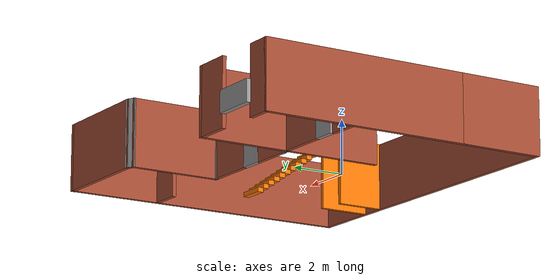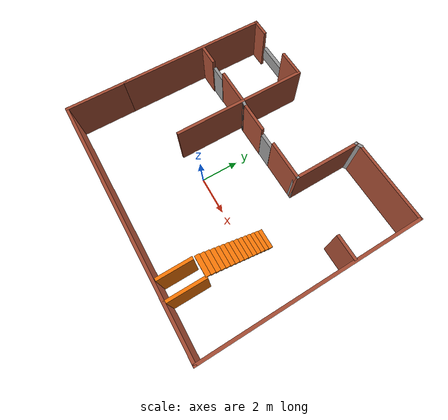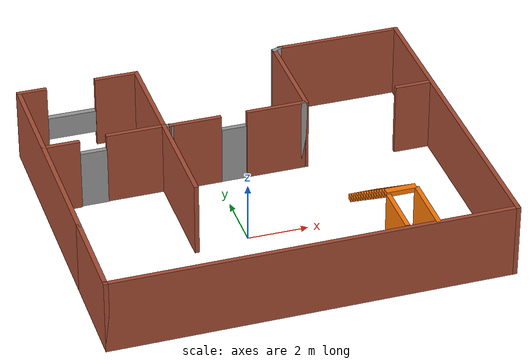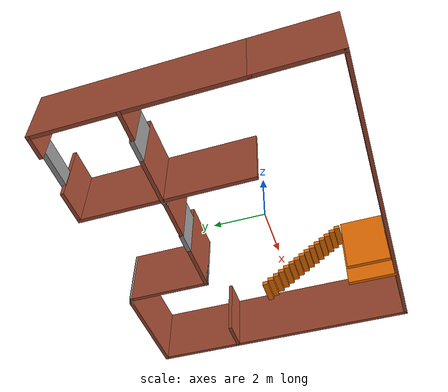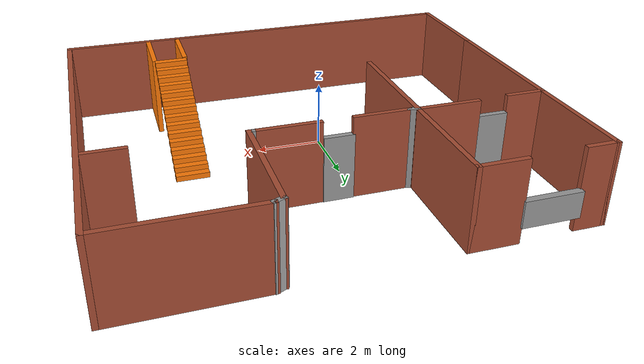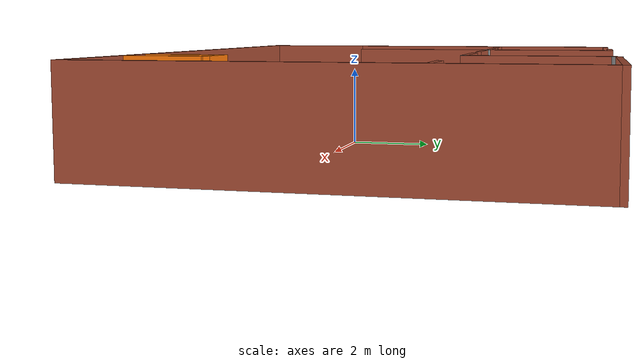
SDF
<?xml version='1.0'?>
<sdf version='1.6'>
  <model name='mybuilding'>
    <pose frame=''>0.81 1.31205 0 0 -0 0</pose>
    <link name='Door_0'>
      <collision name='Door_0_Collision'>
        <geometry>
          <box>
            <size>0.9 0.17 2</size>
          </box>
        </geometry>
        <pose frame=''>0 0 1 0 -0 0</pose>
      </collision>
      <visual name='Door_0_Visual'>
        <pose frame=''>0 0 1 0 -0 0</pose>
        <geometry>
          <box>
            <size>0.9 0.17 2</size>
          </box>
        </geometry>
        <material>
          <script>
            <uri>file://media/materials/scripts/gazebo.material</uri>
            <name>Gazebo/Grey</name>
          </script>
        </material>
      </visual>
      <pose frame=''>-0.266751 2.08903 0 0 -0 0</pose>
    </link>
    <link name='Door_1'>
      <collision name='Door_1_Collision'>
        <geometry>
          <box>
            <size>0.9 0.17 2</size>
          </box>
        </geometry>
        <pose frame=''>0 0 1 0 -0 0</pose>
      </collision>
      <visual name='Door_1_Visual'>
        <pose frame=''>0 0 1 0 -0 0</pose>
        <geometry>
          <box>
            <size>0.9 0.17 2</size>
          </box>
        </geometry>
        <material>
          <script>
            <uri>file://media/materials/scripts/gazebo.material</uri>
            <name>Gazebo/Grey</name>
          </script>
        </material>
      </visual>
      <pose frame=''>-4.93273 2.09956 0 0 -0 0</pose>
    </link>
    <link name='Stairs_0'>
      <visual name='Stairs_0_Visual_0'>
        <pose frame=''>3.4625 -0.251804 0.083333 0 -0 0</pose>
        <geometry>
          <box>
            <size>1 0.233333 0.166667</size>
          </box>
        </geometry>
        <material>
          <script>
            <uri>file://media/materials/scripts/gazebo.material</uri>
            <name>Gazebo/Grey</name>
          </script>
          <ambient>0.996078 0.47451 0.0196078 1</ambient>
        </material>
        <meta>
          <layer>0</layer>
        </meta>
      </visual>
      <collision name='Stairs_0_Collision_0'>
        <geometry>
          <box>
            <size>1 0.233333 0.166667</size>
          </box>
        </geometry>
        <pose frame=''>3.4625 -0.251804 0.083333 0 -0 0</pose>
      </collision>
      <visual name='Stairs_0_Visual_1'>
        <pose frame=''>3.4625 -0.485137 0.25 0 -0 0</pose>
        <geometry>
          <box>
            <size>1 0.233333 0.166667</size>
          </box>
        </geometry>
        <material>
          <script>
            <uri>file://media/materials/scripts/gazebo.material</uri>
            <name>Gazebo/Grey</name>
          </script>
          <ambient>0.996078 0.47451 0.0196078 1</ambient>
        </material>
        <meta>
          <layer>0</layer>
        </meta>
      </visual>
      <collision name='Stairs_0_Collision_1'>
        <geometry>
          <box>
            <size>1 0.233333 0.166667</size>
          </box>
        </geometry>
        <pose frame=''>3.4625 -0.485137 0.25 0 -0 0</pose>
      </collision>
      <visual name='Stairs_0_Visual_2'>
        <pose frame=''>3.4625 -0.71847 0.416667 0 -0 0</pose>
        <geometry>
          <box>
            <size>1 0.233333 0.166667</size>
          </box>
        </geometry>
        <material>
          <script>
            <uri>file://media/materials/scripts/gazebo.material</uri>
            <name>Gazebo/Grey</name>
          </script>
          <ambient>0.996078 0.47451 0.0196078 1</ambient>
        </material>
        <meta>
          <layer>0</layer>
        </meta>
      </visual>
      <collision name='Stairs_0_Collision_2'>
        <geometry>
          <box>
            <size>1 0.233333 0.166667</size>
          </box>
        </geometry>
        <pose frame=''>3.4625 -0.71847 0.416667 0 -0 0</pose>
      </collision>
      <visual name='Stairs_0_Visual_3'>
        <pose frame=''>3.4625 -0.951804 0.583333 0 -0 0</pose>
        <geometry>
          <box>
            <size>1 0.233333 0.166667</size>
          </box>
        </geometry>
        <material>
          <script>
            <uri>file://media/materials/scripts/gazebo.material</uri>
            <name>Gazebo/Grey</name>
          </script>
          <ambient>0.996078 0.47451 0.0196078 1</ambient>
        </material>
        <meta>
          <layer>0</layer>
        </meta>
      </visual>
      <collision name='Stairs_0_Collision_3'>
        <geometry>
          <box>
            <size>1 0.233333 0.166667</size>
          </box>
        </geometry>
        <pose frame=''>3.4625 -0.951804 0.583333 0 -0 0</pose>
      </collision>
      <visual name='Stairs_0_Visual_4'>
        <pose frame=''>3.4625 -1.18514 0.75 0 -0 0</pose>
        <geometry>
          <box>
            <size>1 0.233333 0.166667</size>
          </box>
        </geometry>
        <material>
          <script>
            <uri>file://media/materials/scripts/gazebo.material</uri>
            <name>Gazebo/Grey</name>
          </script>
          <ambient>0.996078 0.47451 0.0196078 1</ambient>
        </material>
        <meta>
          <layer>0</layer>
        </meta>
      </visual>
      <collision name='Stairs_0_Collision_4'>
        <geometry>
          <box>
            <size>1 0.233333 0.166667</size>
          </box>
        </geometry>
        <pose frame=''>3.4625 -1.18514 0.75 0 -0 0</pose>
      </collision>
      <visual name='Stairs_0_Visual_5'>
        <pose frame=''>3.4625 -1.41847 0.916667 0 -0 0</pose>
        <geometry>
          <box>
            <size>1 0.233333 0.166667</size>
          </box>
        </geometry>
        <material>
          <script>
            <uri>file://media/materials/scripts/gazebo.material</uri>
            <name>Gazebo/Grey</name>
          </script>
          <ambient>0.996078 0.47451 0.0196078 1</ambient>
        </material>
        <meta>
          <layer>0</layer>
        </meta>
      </visual>
      <collision name='Stairs_0_Collision_5'>
        <geometry>
          <box>
            <size>1 0.233333 0.166667</size>
          </box>
        </geometry>
        <pose frame=''>3.4625 -1.41847 0.916667 0 -0 0</pose>
      </collision>
      <visual name='Stairs_0_Visual_6'>
        <pose frame=''>3.4625 -1.6518 1.08333 0 -0 0</pose>
        <geometry>
          <box>
            <size>1 0.233333 0.166667</size>
          </box>
        </geometry>
        <material>
          <script>
            <uri>file://media/materials/scripts/gazebo.material</uri>
            <name>Gazebo/Grey</name>
          </script>
          <ambient>0.996078 0.47451 0.0196078 1</ambient>
        </material>
        <meta>
          <layer>0</layer>
        </meta>
      </visual>
      <collision name='Stairs_0_Collision_6'>
        <geometry>
          <box>
            <size>1 0.233333 0.166667</size>
          </box>
        </geometry>
        <pose frame=''>3.4625 -1.6518 1.08333 0 -0 0</pose>
      </collision>
      <visual name='Stairs_0_Visual_7'>
        <pose frame=''>3.4625 -1.88514 1.25 0 -0 0</pose>
        <geometry>
          <box>
            <size>1 0.233333 0.166667</size>
          </box>
        </geometry>
        <material>
          <script>
            <uri>file://media/materials/scripts/gazebo.material</uri>
            <name>Gazebo/Grey</name>
          </script>
          <ambient>0.996078 0.47451 0.0196078 1</ambient>
        </material>
        <meta>
          <layer>0</layer>
        </meta>
      </visual>
      <collision name='Stairs_0_Collision_7'>
        <geometry>
          <box>
            <size>1 0.233333 0.166667</size>
          </box>
        </geometry>
        <pose frame=''>3.4625 -1.88514 1.25 0 -0 0</pose>
      </collision>
      <visual name='Stairs_0_Visual_8'>
        <pose frame=''>3.4625 -2.11847 1.41667 0 -0 0</pose>
        <geometry>
          <box>
            <size>1 0.233333 0.166667</size>
          </box>
        </geometry>
        <material>
          <script>
            <uri>file://media/materials/scripts/gazebo.material</uri>
            <name>Gazebo/Grey</name>
          </script>
          <ambient>0.996078 0.47451 0.0196078 1</ambient>
        </material>
        <meta>
          <layer>0</layer>
        </meta>
      </visual>
      <collision name='Stairs_0_Collision_8'>
        <geometry>
          <box>
            <size>1 0.233333 0.166667</size>
          </box>
        </geometry>
        <pose frame=''>3.4625 -2.11847 1.41667 0 -0 0</pose>
      </collision>
      <visual name='Stairs_0_Visual_9'>
        <pose frame=''>3.4625 -2.3518 1.58333 0 -0 0</pose>
        <geometry>
          <box>
            <size>1 0.233333 0.166667</size>
          </box>
        </geometry>
        <material>
          <script>
            <uri>file://media/materials/scripts/gazebo.material</uri>
            <name>Gazebo/Grey</name>
          </script>
          <ambient>0.996078 0.47451 0.0196078 1</ambient>
        </material>
        <meta>
          <layer>0</layer>
        </meta>
      </visual>
      <collision name='Stairs_0_Collision_9'>
        <geometry>
          <box>
            <size>1 0.233333 0.166667</size>
          </box>
        </geometry>
        <pose frame=''>3.4625 -2.3518 1.58333 0 -0 0</pose>
      </collision>
      <visual name='Stairs_0_Visual_10'>
        <pose frame=''>3.4625 -2.58514 1.75 0 -0 0</pose>
        <geometry>
          <box>
            <size>1 0.233333 0.166667</size>
          </box>
        </geometry>
        <material>
          <script>
            <uri>file://media/materials/scripts/gazebo.material</uri>
            <name>Gazebo/Grey</name>
          </script>
          <ambient>0.996078 0.47451 0.0196078 1</ambient>
        </material>
        <meta>
          <layer>0</layer>
        </meta>
      </visual>
      <collision name='Stairs_0_Collision_10'>
        <geometry>
          <box>
            <size>1 0.233333 0.166667</size>
          </box>
        </geometry>
        <pose frame=''>3.4625 -2.58514 1.75 0 -0 0</pose>
      </collision>
      <visual name='Stairs_0_Visual_11'>
        <pose frame=''>3.4625 -2.81847 1.91667 0 -0 0</pose>
        <geometry>
          <box>
            <size>1 0.233333 0.166667</size>
          </box>
        </geometry>
        <material>
          <script>
            <uri>file://media/materials/scripts/gazebo.material</uri>
            <name>Gazebo/Grey</name>
          </script>
          <ambient>0.996078 0.47451 0.0196078 1</ambient>
        </material>
        <meta>
          <layer>0</layer>
        </meta>
      </visual>
      <collision name='Stairs_0_Collision_11'>
        <geometry>
          <box>
            <size>1 0.233333 0.166667</size>
          </box>
        </geometry>
        <pose frame=''>3.4625 -2.81847 1.91667 0 -0 0</pose>
      </collision>
      <visual name='Stairs_0_Visual_12'>
        <pose frame=''>3.4625 -3.0518 2.08333 0 -0 0</pose>
        <geometry>
          <box>
            <size>1 0.233333 0.166667</size>
          </box>
        </geometry>
        <material>
          <script>
            <uri>file://media/materials/scripts/gazebo.material</uri>
            <name>Gazebo/Grey</name>
          </script>
          <ambient>0.996078 0.47451 0.0196078 1</ambient>
        </material>
        <meta>
          <layer>0</layer>
        </meta>
      </visual>
      <collision name='Stairs_0_Collision_12'>
        <geometry>
          <box>
            <size>1 0.233333 0.166667</size>
          </box>
        </geometry>
        <pose frame=''>3.4625 -3.0518 2.08333 0 -0 0</pose>
      </collision>
      <visual name='Stairs_0_Visual_13'>
        <pose frame=''>3.4625 -3.28514 2.25 0 -0 0</pose>
        <geometry>
          <box>
            <size>1 0.233333 0.166667</size>
          </box>
        </geometry>
        <material>
          <script>
            <uri>file://media/materials/scripts/gazebo.material</uri>
            <name>Gazebo/Grey</name>
          </script>
          <ambient>0.996078 0.47451 0.0196078 1</ambient>
        </material>
        <meta>
          <layer>0</layer>
        </meta>
      </visual>
      <collision name='Stairs_0_Collision_13'>
        <geometry>
          <box>
            <size>1 0.233333 0.166667</size>
          </box>
        </geometry>
        <pose frame=''>3.4625 -3.28514 2.25 0 -0 0</pose>
      </collision>
      <visual name='Stairs_0_Visual_14'>
        <pose frame=''>3.4625 -3.51847 2.41667 0 -0 0</pose>
        <geometry>
          <box>
            <size>1 0.233333 0.166667</size>
          </box>
        </geometry>
        <material>
          <script>
            <uri>file://media/materials/scripts/gazebo.material</uri>
            <name>Gazebo/Grey</name>
          </script>
          <ambient>0.996078 0.47451 0.0196078 1</ambient>
        </material>
        <meta>
          <layer>0</layer>
        </meta>
      </visual>
      <collision name='Stairs_0_Collision_14'>
        <geometry>
          <box>
            <size>1 0.233333 0.166667</size>
          </box>
        </geometry>
        <pose frame=''>3.4625 -3.51847 2.41667 0 -0 0</pose>
      </collision>
    </link>
    <link name='Wall_0'>
      <collision name='Wall_0_Collision'>
        <geometry>
          <box>
            <size>3.25 0.15 2.5</size>
          </box>
        </geometry>
        <pose frame=''>0 0 1.25 0 -0 0</pose>
      </collision>
      <visual name='Wall_0_Visual'>
        <pose frame=''>0 0 1.25 0 -0 0</pose>
        <geometry>
          <box>
            <size>3.25 0.15 2.5</size>
          </box>
        </geometry>
        <material>
          <script>
            <uri>file://media/materials/scripts/gazebo.material</uri>
            <name>Gazebo/Bricks</name>
          </script>
          <ambient>0 0 1 1</ambient>
        </material>
        <meta>
          <layer>0</layer>
        </meta>
      </visual>
      <pose frame=''>-6.55 -4.01205 0 0 0 -1.5708</pose>
    </link>
    <link name='Wall_1'>
      <collision name='Wall_1_Collision'>
        <geometry>
          <box>
            <size>13.25 0.15 2.5</size>
          </box>
        </geometry>
        <pose frame=''>0 0 1.25 0 -0 0</pose>
      </collision>
      <visual name='Wall_1_Visual'>
        <pose frame=''>0 0 1.25 0 -0 0</pose>
        <geometry>
          <box>
            <size>13.25 0.15 2.5</size>
          </box>
        </geometry>
        <material>
          <script>
            <uri>file://media/materials/scripts/gazebo.material</uri>
            <name>Gazebo/Bricks</name>
          </script>
          <ambient>0 0 1 1</ambient>
        </material>
        <meta>
          <layer>0</layer>
        </meta>
      </visual>
      <pose frame=''>0 -5.56205 0 0 -0 0</pose>
    </link>
    <link name='Wall_14'>
      <collision name='Wall_14_Collision'>
        <geometry>
          <box>
            <size>11.25 0.15 2.5</size>
          </box>
        </geometry>
        <pose frame=''>0 0 1.25 0 -0 0</pose>
      </collision>
      <visual name='Wall_14_Visual'>
        <pose frame=''>0 0 1.25 0 -0 0</pose>
        <geometry>
          <box>
            <size>11.25 0.15 2.5</size>
          </box>
        </geometry>
        <material>
          <script>
            <uri>file://media/materials/scripts/gazebo.material</uri>
            <name>Gazebo/Bricks</name>
          </script>
          <ambient>1 1 1 1</ambient>
        </material>
        <meta>
          <layer>0</layer>
        </meta>
      </visual>
      <pose frame=''>6.55 -0.012052 0 0 -0 1.5708</pose>
    </link>
    <link name='Wall_15'>
      <collision name='Wall_15_Collision'>
        <geometry>
          <box>
            <size>4.25 0.15 2.5</size>
          </box>
        </geometry>
        <pose frame=''>0 0 1.25 0 -0 0</pose>
      </collision>
      <visual name='Wall_15_Visual'>
        <pose frame=''>0 0 1.25 0 -0 0</pose>
        <geometry>
          <box>
            <size>4.25 0.15 2.5</size>
          </box>
        </geometry>
        <material>
          <script>
            <uri>file://media/materials/scripts/gazebo.material</uri>
            <name>Gazebo/Bricks</name>
          </script>
          <ambient>1 1 1 1</ambient>
        </material>
        <meta>
          <layer>0</layer>
        </meta>
      </visual>
      <pose frame=''>4.5 5.53795 0 0 -0 3.14159</pose>
    </link>
    <link name='Wall_19'>
      <collision name='Wall_19_Collision'>
        <geometry>
          <box>
            <size>8 0.15 2.5</size>
          </box>
        </geometry>
        <pose frame=''>0 0 1.25 0 -0 0</pose>
      </collision>
      <visual name='Wall_19_Visual'>
        <pose frame=''>0 0 1.25 0 -0 0</pose>
        <geometry>
          <box>
            <size>8 0.15 2.5</size>
          </box>
        </geometry>
        <material>
          <script>
            <uri>file://media/materials/scripts/gazebo.material</uri>
            <name>Gazebo/Bricks</name>
          </script>
          <ambient>1 1 1 1</ambient>
        </material>
        <meta>
          <layer>0</layer>
        </meta>
      </visual>
      <pose frame=''>-6.55 1.46295 0 0 -0 1.5708</pose>
    </link>
    <link name='Wall_24'>
      <collision name='Wall_24_Collision'>
        <geometry>
          <box>
            <size>1 0.15 2.5</size>
          </box>
        </geometry>
        <pose frame=''>0 0 1.25 0 -0 0</pose>
      </collision>
      <visual name='Wall_24_Visual'>
        <pose frame=''>0 0 1.25 0 -0 0</pose>
        <geometry>
          <box>
            <size>1 0.15 2.5</size>
          </box>
        </geometry>
        <material>
          <script>
            <uri>file://media/materials/scripts/gazebo.material</uri>
            <name>Gazebo/Bricks</name>
          </script>
          <ambient>1 1 1 1</ambient>
        </material>
        <meta>
          <layer>0</layer>
        </meta>
      </visual>
      <pose frame=''>-6.125 5.38795 0 0 -0 0</pose>
    </link>
    <link name='Wall_26'>
      <collision name='Wall_26_Collision'>
        <geometry>
          <box>
            <size>1.5 0.15 2.5</size>
          </box>
        </geometry>
        <pose frame=''>0 0 1.25 0 -0 0</pose>
      </collision>
      <visual name='Wall_26_Visual'>
        <pose frame=''>0 0 1.25 0 -0 0</pose>
        <geometry>
          <box>
            <size>1.5 0.15 2.5</size>
          </box>
        </geometry>
        <material>
          <script>
            <uri>file://media/materials/scripts/gazebo.material</uri>
            <name>Gazebo/Bricks</name>
          </script>
          <ambient>1 1 1 1</ambient>
        </material>
        <meta>
          <layer>0</layer>
        </meta>
      </visual>
      <pose frame=''>-3.23875 5.46069 0 0 -0 0</pose>
    </link>
    <link name='Wall_31'>
      <collision name='Wall_31_Collision'>
        <geometry>
          <box>
            <size>1.75 0.15 2.5</size>
          </box>
        </geometry>
        <pose frame=''>0 0 1.25 0 -0 0</pose>
      </collision>
      <visual name='Wall_31_Visual'>
        <pose frame=''>0 0 1.25 0 -0 0</pose>
        <geometry>
          <box>
            <size>1.75 0.15 2.5</size>
          </box>
        </geometry>
        <material>
          <script>
            <uri>file://media/materials/scripts/gazebo.material</uri>
            <name>Gazebo/Bricks</name>
          </script>
          <ambient>1 1 1 1</ambient>
        </material>
        <meta>
          <layer>0</layer>
        </meta>
      </visual>
      <pose frame=''>-1.53512 2.06914 0 0 -0 3.14159</pose>
    </link>
    <link name='Wall_33'>
      <collision name='Wall_33_Collision'>
        <geometry>
          <box>
            <size>3.5 0.15 2.5</size>
          </box>
        </geometry>
        <pose frame=''>0 0 1.25 0 -0 0</pose>
      </collision>
      <visual name='Wall_33_Visual'>
        <pose frame=''>0 0 1.25 0 -0 0</pose>
        <geometry>
          <box>
            <size>3.5 0.15 2.5</size>
          </box>
        </geometry>
        <material>
          <script>
            <uri>file://media/materials/scripts/gazebo.material</uri>
            <name>Gazebo/Bricks</name>
          </script>
          <ambient>1 1 1 1</ambient>
        </material>
        <meta>
          <layer>0</layer>
        </meta>
      </visual>
      <pose frame=''>-2.56375 3.78569 0 0 0 -1.5708</pose>
    </link>
    <link name='Wall_34'>
      <collision name='Wall_34_Collision'>
        <geometry>
          <box>
            <size>0.382374 0.15 2.5</size>
          </box>
        </geometry>
        <pose frame=''>0 0 1.25 0 -0 0</pose>
      </collision>
      <visual name='Wall_34_Visual'>
        <pose frame=''>0 0 1.25 0 -0 0</pose>
        <geometry>
          <box>
            <size>0.382374 0.15 2.5</size>
          </box>
        </geometry>
        <material>
          <script>
            <uri>file://media/materials/scripts/gazebo.material</uri>
            <name>Gazebo/Grey</name>
          </script>
          <ambient>1 1 1 1</ambient>
        </material>
        <meta>
          <layer>0</layer>
        </meta>
      </visual>
      <pose frame=''>-2.44943 2.08991 0 0 0 -0.179779</pose>
    </link>
    <link name='Wall_36'>
      <collision name='Wall_36_Collision'>
        <geometry>
          <box>
            <size>2 0.15 2.5</size>
          </box>
        </geometry>
        <pose frame=''>0 0 1.25 0 -0 0</pose>
      </collision>
      <visual name='Wall_36_Visual'>
        <pose frame=''>0 0 1.25 0 -0 0</pose>
        <geometry>
          <box>
            <size>2 0.15 2.5</size>
          </box>
        </geometry>
        <material>
          <script>
            <uri>file://media/materials/scripts/gazebo.material</uri>
            <name>Gazebo/Bricks</name>
          </script>
          <ambient>1 1 1 1</ambient>
        </material>
        <meta>
          <layer>0</layer>
        </meta>
      </visual>
      <pose frame=''>1.19366 2.08435 0 0 -0 0</pose>
    </link>
    <link name='Wall_38'>
      <collision name='Wall_38_Collision'>
        <geometry>
          <box>
            <size>0.25 0.15 2.5</size>
          </box>
        </geometry>
        <pose frame=''>0 0 1.25 0 -0 0</pose>
      </collision>
      <visual name='Wall_38_Visual'>
        <pose frame=''>0 0 1.25 0 -0 0</pose>
        <geometry>
          <box>
            <size>0.25 0.15 2.5</size>
          </box>
        </geometry>
        <material>
          <script>
            <uri>file://media/materials/scripts/gazebo.material</uri>
            <name>Gazebo/Grey</name>
          </script>
          <ambient>1 1 1 1</ambient>
        </material>
        <meta>
          <layer>0</layer>
        </meta>
      </visual>
      <pose frame=''>2.16866 2.08435 0 0 -0 0</pose>
    </link>
    <link name='Wall_39'>
      <collision name='Wall_39_Collision'>
        <geometry>
          <box>
            <size>3.5 0.15 2.5</size>
          </box>
        </geometry>
        <pose frame=''>0 0 1.25 0 -0 0</pose>
      </collision>
      <visual name='Wall_39_Visual'>
        <pose frame=''>0 0 1.25 0 -0 0</pose>
        <geometry>
          <box>
            <size>3.5 0.15 2.5</size>
          </box>
        </geometry>
        <material>
          <script>
            <uri>file://media/materials/scripts/gazebo.material</uri>
            <name>Gazebo/Bricks</name>
          </script>
          <ambient>1 1 1 1</ambient>
        </material>
        <meta>
          <layer>0</layer>
        </meta>
      </visual>
      <pose frame=''>2.21866 3.75935 0 0 -0 1.5708</pose>
    </link>
    <link name='Wall_40'>
      <collision name='Wall_40_Collision'>
        <geometry>
          <box>
            <size>0.403479 0.15 2.5</size>
          </box>
        </geometry>
        <pose frame=''>0 0 1.25 0 -0 0</pose>
      </collision>
      <visual name='Wall_40_Visual'>
        <pose frame=''>0 0 1.25 0 -0 0</pose>
        <geometry>
          <box>
            <size>0.403479 0.15 2.5</size>
          </box>
        </geometry>
        <material>
          <script>
            <uri>file://media/materials/scripts/gazebo.material</uri>
            <name>Gazebo/Grey</name>
          </script>
          <ambient>1 1 1 1</ambient>
        </material>
        <meta>
          <layer>0</layer>
        </meta>
      </visual>
      <pose frame=''>2.33433 5.48615 0 0 -0 0.421051</pose>
    </link>
    <link name='Wall_44'>
      <collision name='Wall_44_Collision'>
        <geometry>
          <box>
            <size>2 0.15 2.5</size>
          </box>
        </geometry>
        <pose frame=''>0 0 1.25 0 -0 0</pose>
      </collision>
      <visual name='Wall_44_Visual'>
        <pose frame=''>0 0 1.25 0 -0 0</pose>
        <geometry>
          <box>
            <size>2 0.15 2.5</size>
          </box>
        </geometry>
        <material>
          <script>
            <uri>file://media/materials/scripts/gazebo.material</uri>
            <name>Gazebo/Bricks</name>
          </script>
          <ambient>1 1 1 1</ambient>
        </material>
        <meta>
          <layer>0</layer>
        </meta>
      </visual>
      <pose frame=''>-3.48875 2.11069 0 0 -0 3.14159</pose>
    </link>
    <link name='Wall_46'>
      <collision name='Wall_46_Collision'>
        <geometry>
          <box>
            <size>1.25 0.15 2.5</size>
          </box>
        </geometry>
        <pose frame=''>0 0 1.25 0 -0 0</pose>
      </collision>
      <visual name='Wall_46_Visual'>
        <pose frame=''>0 0 1.25 0 -0 0</pose>
        <geometry>
          <box>
            <size>1.25 0.15 2.5</size>
          </box>
        </geometry>
        <material>
          <script>
            <uri>file://media/materials/scripts/gazebo.material</uri>
            <name>Gazebo/Bricks</name>
          </script>
          <ambient>1 1 1 1</ambient>
        </material>
        <meta>
          <layer>0</layer>
        </meta>
      </visual>
      <pose frame=''>-5.99983 2.03872 0 0 -0 3.14159</pose>
    </link>
    <link name='Wall_48'>
      <collision name='Wall_48_Collision'>
        <geometry>
          <box>
            <size>3.75 0.15 2.5</size>
          </box>
        </geometry>
        <pose frame=''>0 0 1.25 0 -0 0</pose>
      </collision>
      <visual name='Wall_48_Visual'>
        <pose frame=''>0 0 1.25 0 -0 0</pose>
        <geometry>
          <box>
            <size>3.75 0.15 2.5</size>
          </box>
        </geometry>
        <material>
          <script>
            <uri>file://media/materials/scripts/gazebo.material</uri>
            <name>Gazebo/Bricks</name>
          </script>
          <ambient>1 1 1 1</ambient>
        </material>
        <meta>
          <layer>0</layer>
        </meta>
      </visual>
      <pose frame=''>-2.56375 0.310689 0 0 0 -1.5708</pose>
    </link>
    <link name='Wall_50'>
      <collision name='Wall_50_Collision'>
        <geometry>
          <box>
            <size>1.25 0.15 2.5</size>
          </box>
        </geometry>
        <pose frame=''>0 0 1.25 0 -0 0</pose>
      </collision>
      <visual name='Wall_50_Visual'>
        <pose frame=''>0 0 1.25 0 -0 0</pose>
        <geometry>
          <box>
            <size>1.25 0.15 2.5</size>
          </box>
        </geometry>
        <material>
          <script>
            <uri>file://media/materials/scripts/gazebo.material</uri>
            <name>Gazebo/Bricks</name>
          </script>
          <ambient>1 1 1 1</ambient>
        </material>
        <meta>
          <layer>0</layer>
        </meta>
      </visual>
      <pose frame=''>5.90862 2.03872 0 0 -0 3.14159</pose>
    </link>
    <link name='Wall_52'>
      <collision name='Wall_52_Collision'>
        <geometry>
          <box>
            <size>1.75 0.15 2.5</size>
          </box>
        </geometry>
        <pose frame=''>0 0 1.25 0 -0 0</pose>
      </collision>
      <visual name='Wall_52_Visual'>
        <pose frame=''>0 0 1.25 0 -0 0</pose>
        <geometry>
          <box>
            <size>1.75 0.15 2.5</size>
          </box>
        </geometry>
        <material>
          <script>
            <uri>file://media/materials/scripts/gazebo.material</uri>
            <name>Gazebo/Grey</name>
          </script>
          <ambient>0.996078 0.47451 0.0196078 1</ambient>
        </material>
        <meta>
          <layer>0</layer>
        </meta>
      </visual>
      <pose frame=''>2.99103 -4.58623 0 0 0 -1.5708</pose>
    </link>
    <link name='Wall_54'>
      <collision name='Wall_54_Collision'>
        <geometry>
          <box>
            <size>2 0.15 2.5</size>
          </box>
        </geometry>
        <pose frame=''>0 0 1.25 0 -0 0</pose>
      </collision>
      <visual name='Wall_54_Visual'>
        <pose frame=''>0 0 1.25 0 -0 0</pose>
        <geometry>
          <box>
            <size>2 0.15 2.5</size>
          </box>
        </geometry>
        <material>
          <script>
            <uri>file://media/materials/scripts/gazebo.material</uri>
            <name>Gazebo/Grey</name>
          </script>
          <ambient>0.996078 0.47451 0.0196078 1</ambient>
        </material>
        <meta>
          <layer>0</layer>
        </meta>
      </visual>
      <pose frame=''>3.96439 -4.57435 0 0 0 -1.5708</pose>
    </link>
    <link name='Window_0'>
      <collision name='Window_0_Collision'>
        <geometry>
          <box>
            <size>1.71253 0.2 0.8</size>
          </box>
        </geometry>
        <pose frame=''>0 0 0.4 0 -0 0</pose>
      </collision>
      <visual name='Window_0_Visual'>
        <pose frame=''>0 0 0.4 0 -0 0</pose>
        <geometry>
          <box>
            <size>1.71253 0.2 0.8</size>
          </box>
        </geometry>
        <material>
          <script>
            <uri>file://media/materials/scripts/gazebo.material</uri>
            <name>Gazebo/Grey</name>
          </script>
        </material>
      </visual>
      <pose frame=''>-4.80375 5.50137 0.5 0 -0 0</pose>
    </link>
    <static>1</static>
  </model>
</sdf>
